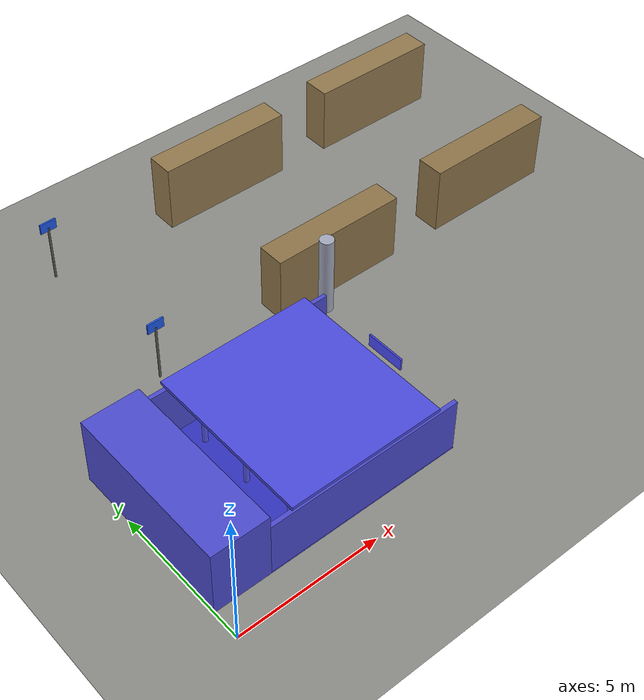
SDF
<sdf version="1.8">
 <world name="warehouse">
  <model name="ground_plane">
   <static>true</static>
   <link name="link">
    <collision name="c">
     <geometry><plane><normal>0 0 1</normal><size>80 60</size></plane></geometry>
     <surface>
      <friction>
       <ode><mu>0.6</mu><mu2>0.5</mu2><slip1>0.003</slip1><slip2>0.003</slip2><fdir1>1 0 0</fdir1></ode>
      </friction>
      <contact><ode><kp>1e6</kp><kd>100.0</kd><max_vel>0.1</max_vel><min_depth>0.001</min_depth></ode></contact>
     </surface>
    </collision>
    <visual name="v">
     <geometry><plane><normal>0 0 1</normal><size>80 60</size></plane></geometry>
     <material><ambient>0.55 0.55 0.53 1</ambient><diffuse>0.55 0.55 0.53 1</diffuse></material>
    </visual>
   </link>
  </model>
  <model name="col_s1">
   <static>true</static>
   <pose>10 8 1.5 0 0 0</pose>
   <link name="link">
    <collision name="c">
     <geometry><cylinder><radius>0.25</radius><length>3.0</length></cylinder></geometry>
    </collision>
    <visual name="v">
     <geometry><cylinder><radius>0.25</radius><length>3.0</length></cylinder></geometry>
     <material><ambient>0.60 0.62 0.70 1</ambient><diffuse>0.65 0.67 0.75 1</diffuse></material>
    </visual>
   </link>
  </model>
  <model name="rack_B1">
   <static>true</static>
   <pose>11 15 1.25 0 0 0</pose>
   <link name="link">
    <collision name="c"><geometry><box><size>5.0 1.0 2.5</size></box></geometry></collision>
    <visual name="v">
     <geometry><box><size>5.0 1.0 2.5</size></box></geometry>
     <material><ambient>0.50 0.40 0.26 1</ambient><diffuse>0.58 0.48 0.31 1</diffuse></material>
    </visual>
   </link>
  </model>
  <model name="rack_B2">
   <static>true</static>
   <pose>18 15 1.25 0 0 0</pose>
   <link name="link">
    <collision name="c"><geometry><box><size>5.0 1.0 2.5</size></box></geometry></collision>
    <visual name="v">
     <geometry><box><size>5.0 1.0 2.5</size></box></geometry>
     <material><ambient>0.50 0.40 0.26 1</ambient><diffuse>0.58 0.48 0.31 1</diffuse></material>
    </visual>
   </link>
  </model>
  <model name="rack_C1">
   <static>true</static>
   <pose>11 9 1.25 0 0 0</pose>
   <link name="link">
    <collision name="c"><geometry><box><size>5.0 1.0 2.5</size></box></geometry></collision>
    <visual name="v">
     <geometry><box><size>5.0 1.0 2.5</size></box></geometry>
     <material><ambient>0.48 0.38 0.24 1</ambient><diffuse>0.56 0.46 0.29 1</diffuse></material>
    </visual>
   </link>
  </model>
  <model name="rack_C2">
   <static>true</static>
   <pose>18 9 1.25 0 0 0</pose>
   <link name="link">
    <collision name="c"><geometry><box><size>5.0 1.0 2.5</size></box></geometry></collision>
    <visual name="v">
     <geometry><box><size>5.0 1.0 2.5</size></box></geometry>
     <material><ambient>0.48 0.38 0.24 1</ambient><diffuse>0.56 0.46 0.29 1</diffuse></material>
    </visual>
   </link>
  </model>
  <model name="charging_floor">
   <static>true</static>
   <pose>5 4 0.002 0 0 0</pose>
   <link name="link">
    <visual name="v">
     <geometry><box><size>8 6 0.002</size></box></geometry>
     <material><ambient>0.18 0.18 0.65 0.9</ambient><diffuse>0.20 0.20 0.75 0.9</diffuse></material>
    </visual>
   </link>
  </model>
  <model name="charging_backwall">
   <static>true</static>
   <pose>1.0 4 1.25 0 0 0</pose>
   <link name="link">
    <collision name="c"><geometry><box><size>2.0 6 2.5</size></box></geometry></collision>
    <visual name="v">
     <geometry><box><size>2.0 6 2.5</size></box></geometry>
     <material><ambient>0.25 0.25 0.72 1</ambient><diffuse>0.30 0.30 0.82 1</diffuse></material>
    </visual>
   </link>
  </model>
  <model name="charging_wall_s">
   <static>true</static>
   <pose>5 1.1 1.0 0 0 0</pose>
   <link name="link">
    <collision name="c"><geometry><box><size>8 0.15 2.0</size></box></geometry></collision>
    <visual name="v">
     <geometry><box><size>8 0.15 2.0</size></box></geometry>
     <material><ambient>0.25 0.25 0.72 1</ambient><diffuse>0.30 0.30 0.82 1</diffuse></material>
    </visual>
   </link>
  </model>
  <model name="charging_wall_n">
   <static>true</static>
   <pose>5 6.9 1.0 0 0 0</pose>
   <link name="link">
    <collision name="c"><geometry><box><size>8 0.15 2.0</size></box></geometry></collision>
    <visual name="v">
     <geometry><box><size>8 0.15 2.0</size></box></geometry>
     <material><ambient>0.25 0.25 0.72 1</ambient><diffuse>0.30 0.30 0.82 1</diffuse></material>
    </visual>
   </link>
  </model>
  <model name="charging_col_c1">
   <static>true</static>
   <pose>3.5 2 1.1 0 0 0</pose>
   <link name="link">
    <collision name="c">
     <geometry><cylinder><radius>0.09</radius><length>2.2</length></cylinder></geometry>
    </collision>
    <visual name="v">
     <geometry><cylinder><radius>0.09</radius><length>2.2</length></cylinder></geometry>
     <material><ambient>0.3 0.3 0.85 1</ambient><diffuse>0.35 0.35 0.95 1</diffuse></material>
    </visual>
   </link>
  </model>
  <model name="charging_col_c2">
   <static>true</static>
   <pose>3.5 4 1.1 0 0 0</pose>
   <link name="link">
    <collision name="c">
     <geometry><cylinder><radius>0.09</radius><length>2.2</length></cylinder></geometry>
    </collision>
    <visual name="v">
     <geometry><cylinder><radius>0.09</radius><length>2.2</length></cylinder></geometry>
     <material><ambient>0.3 0.3 0.85 1</ambient><diffuse>0.35 0.35 0.95 1</diffuse></material>
    </visual>
   </link>
  </model>
  <model name="charging_col_c3">
   <static>true</static>
   <pose>3.5 6 1.1 0 0 0</pose>
   <link name="link">
    <collision name="c">
     <geometry><cylinder><radius>0.09</radius><length>2.2</length></cylinder></geometry>
    </collision>
    <visual name="v">
     <geometry><cylinder><radius>0.09</radius><length>2.2</length></cylinder></geometry>
     <material><ambient>0.3 0.3 0.85 1</ambient><diffuse>0.35 0.35 0.95 1</diffuse></material>
    </visual>
   </link>
  </model>
  <model name="charging_canopy">
   <static>true</static>
   <pose>5.5 4 2.22 0 0 0</pose>
   <link name="link">
    <collision name="c"><geometry><box><size>5.5 6 0.12</size></box></geometry></collision>
    <visual name="v">
     <geometry><box><size>5.5 6 0.12</size></box></geometry>
     <material><ambient>0.25 0.25 0.78 1</ambient><diffuse>0.30 0.30 0.88 1</diffuse></material>
    </visual>
   </link>
  </model>
  <model name="charger_C1">
   <static>true</static>
   <pose>5.5 2 0.6 0 0 0</pose>
   <link name="link">
    <collision name="c"><geometry><box><size>0.35 0.35 1.2</size></box></geometry></collision>
    <visual name="v">
     <geometry><box><size>0.35 0.35 1.2</size></box></geometry>
     <material><ambient>0.28 0.28 0.95 1</ambient><diffuse>0.30 0.30 1.0 1</diffuse></material>
    </visual>
   </link>
  </model>
  <model name="charger_C2">
   <static>true</static>
   <pose>5.5 4 0.6 0 0 0</pose>
   <link name="link">
    <collision name="c"><geometry><box><size>0.35 0.35 1.2</size></box></geometry></collision>
    <visual name="v">
     <geometry><box><size>0.35 0.35 1.2</size></box></geometry>
     <material><ambient>0.28 0.28 0.95 1</ambient><diffuse>0.30 0.30 1.0 1</diffuse></material>
    </visual>
   </link>
  </model>
  <model name="charger_C3">
   <static>true</static>
   <pose>5.5 6 0.6 0 0 0</pose>
   <link name="link">
    <collision name="c"><geometry><box><size>0.35 0.35 1.2</size></box></geometry></collision>
    <visual name="v">
     <geometry><box><size>0.35 0.35 1.2</size></box></geometry>
     <material><ambient>0.28 0.28 0.95 1</ambient><diffuse>0.30 0.30 1.0 1</diffuse></material>
    </visual>
   </link>
  </model>
  <model name="sign_charging">
   <static>true</static>
   <pose>8.9 4 1.8 0 0 0</pose>
   <link name="link">
    <collision name="c"><geometry><box><size>0.06 1.4 0.45</size></box></geometry></collision>
    <visual name="v">
     <geometry><box><size>0.06 1.4 0.45</size></box></geometry>
     <material><ambient>0.28 0.28 0.92 1</ambient><diffuse>0.30 0.30 1.0 1</diffuse></material>
    </visual>
   </link>
  </model>
  <model name="sign_rowB_pole">
   <static>true</static>
   <pose>4 15 1.1 0 0 0</pose>
   <link name="link">
    <collision name="c">
     <geometry><cylinder><radius>0.04</radius><length>2.2</length></cylinder></geometry>
    </collision>
    <visual name="v">
     <geometry><cylinder><radius>0.04</radius><length>2.2</length></cylinder></geometry>
     <material><ambient>0.3 0.3 0.3 1</ambient><diffuse>0.35 0.35 0.35 1</diffuse></material>
    </visual>
   </link>
  </model>
  <model name="sign_rowB_board">
   <static>true</static>
   <pose>4 15 2.25 0 0 0</pose>
   <link name="link">
    <collision name="c"><geometry><box><size>0.60 0.06 0.38</size></box></geometry></collision>
    <visual name="v">
     <geometry><box><size>0.60 0.06 0.38</size></box></geometry>
     <material><ambient>0.10 0.30 0.82 1</ambient><diffuse>0.12 0.35 0.92 1</diffuse></material>
    </visual>
   </link>
  </model>
  <model name="sign_rowC_pole">
   <static>true</static>
   <pose>4 9 1.1 0 0 0</pose>
   <link name="link">
    <collision name="c">
     <geometry><cylinder><radius>0.04</radius><length>2.2</length></cylinder></geometry>
    </collision>
    <visual name="v">
     <geometry><cylinder><radius>0.04</radius><length>2.2</length></cylinder></geometry>
     <material><ambient>0.3 0.3 0.3 1</ambient><diffuse>0.35 0.35 0.35 1</diffuse></material>
    </visual>
   </link>
  </model>
  <model name="sign_rowC_board">
   <static>true</static>
   <pose>4 9 2.25 0 0 0</pose>
   <link name="link">
    <collision name="c"><geometry><box><size>0.60 0.06 0.38</size></box></geometry></collision>
    <visual name="v">
     <geometry><box><size>0.60 0.06 0.38</size></box></geometry>
     <material><ambient>0.10 0.30 0.82 1</ambient><diffuse>0.12 0.35 0.92 1</diffuse></material>
    </visual>
   </link>
  </model>
 </world>
</sdf>
